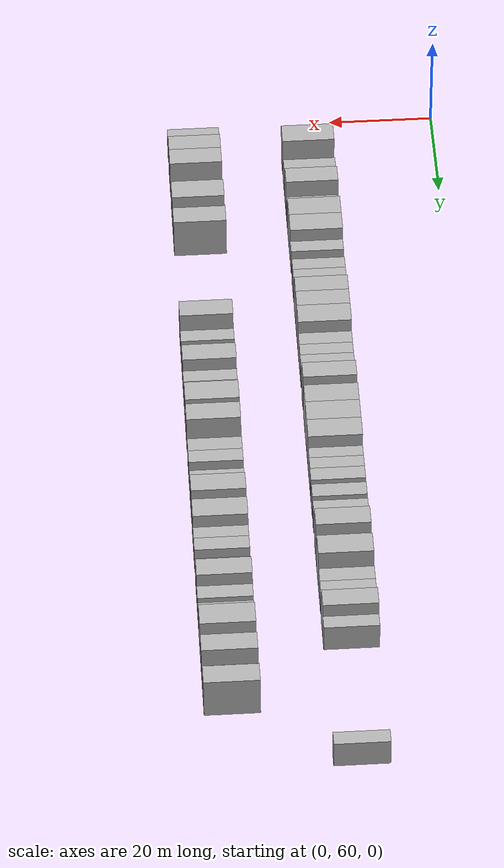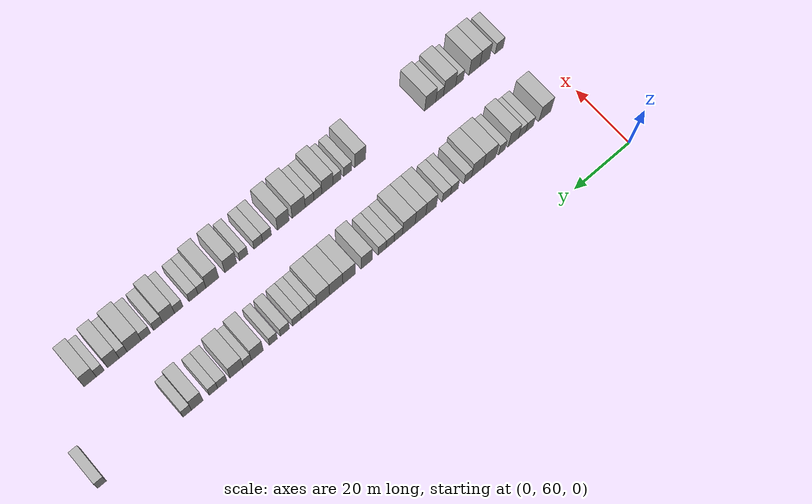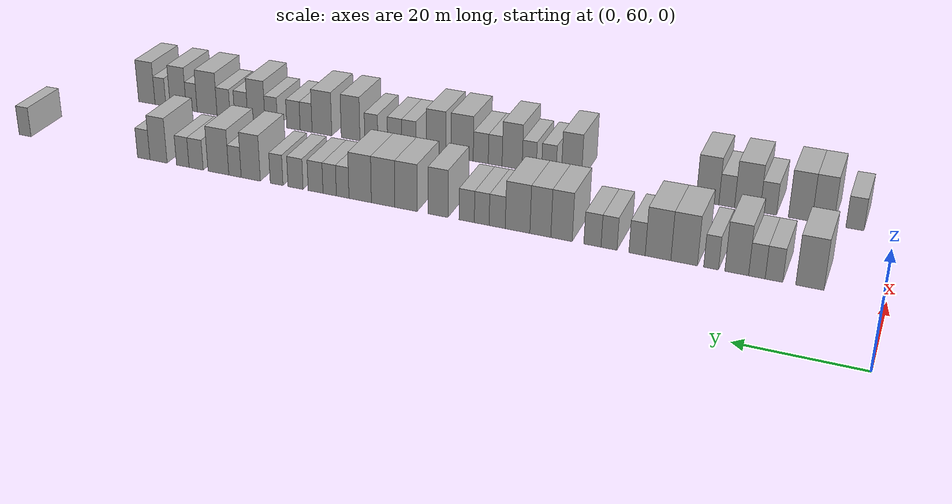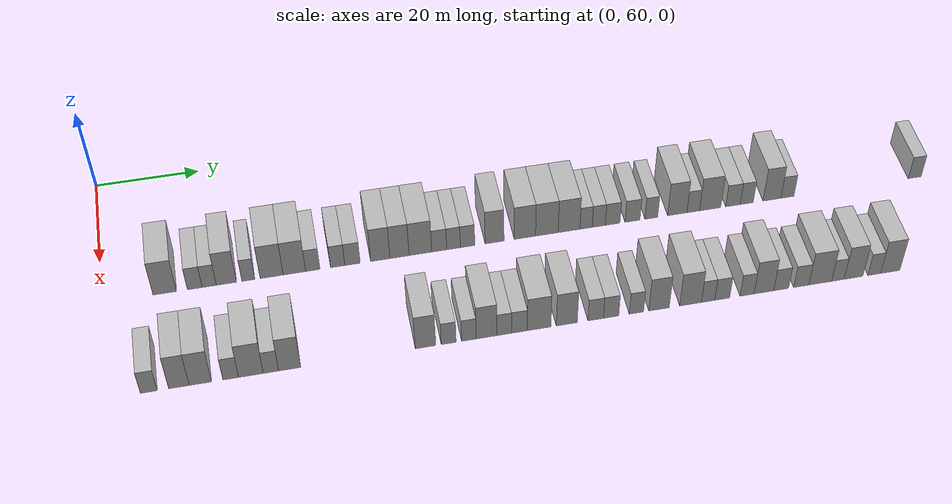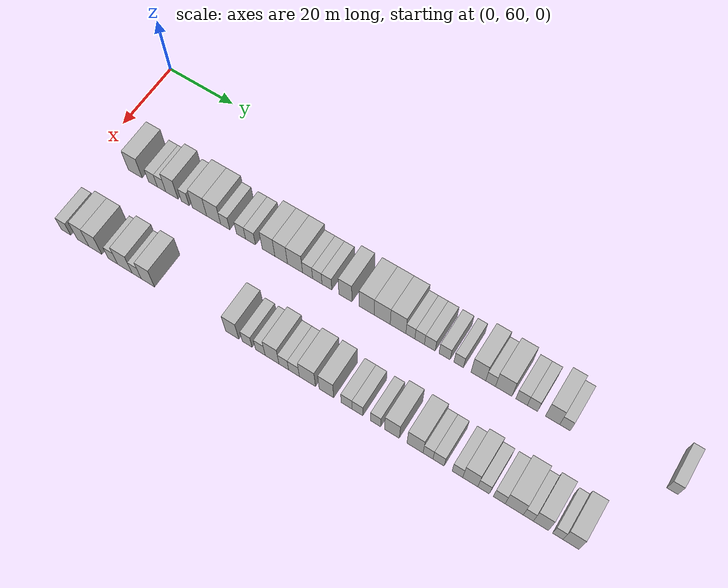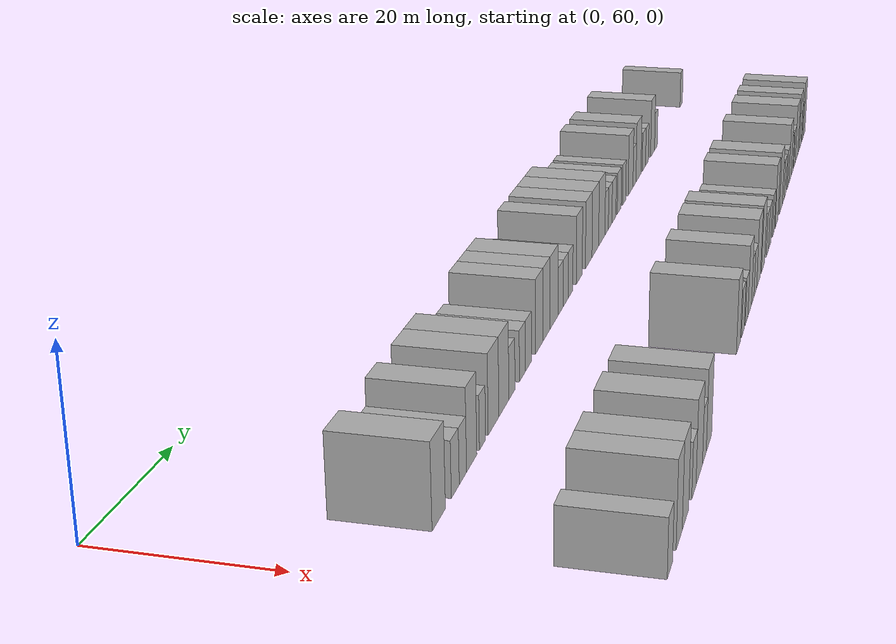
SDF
<sdf version="1.6">
 <world name="default">
  <model name="building_66">
   <static>1</static>
   <pose>25.0000 71.6259 0 0.000000 0.000000 0.000000</pose>
   <link name="link">
    <pose>0 0 4.50 0 0 0</pose>
    <collision name="collision"><geometry><box><size>10.0000 4.3496 9.0000</size></box></geometry></collision>
    <visual name="visual">
     <cast_shadows>0</cast_shadows>
     <geometry><box><size>10.0000 4.3496 9.0000</size></box></geometry>
     <material>
      <script>
       <uri>model://HANNAS_wall/materials/scripts</uri>
       <uri>model://HANNAS_wall/materials/textures</uri>
       <name>vrc/HANNAS_wall</name>
      </script>
     </material>
    </visual>
   </link>
  </model>
  <model name="building_67">
   <static>1</static>
   <pose>25.0000 77.1780 0 0.000000 0.000000 0.000000</pose>
   <link name="link">
    <pose>0 0 3.00 0 0 0</pose>
    <collision name="collision"><geometry><box><size>10.0000 2.7546 6.0000</size></box></geometry></collision>
    <visual name="visual">
     <cast_shadows>0</cast_shadows>
     <geometry><box><size>10.0000 2.7546 6.0000</size></box></geometry>
     <material>
      <script>
       <uri>model://HANNAS_wall/materials/scripts</uri>
       <uri>model://HANNAS_wall/materials/textures</uri>
       <name>vrc/HANNAS_wall</name>
      </script>
     </material>
    </visual>
   </link>
  </model>
  <model name="building_68">
   <static>1</static>
   <pose>25.0000 79.8654 0 0.000000 0.000000 0.000000</pose>
   <link name="link">
    <pose>0 0 3.00 0 0 0</pose>
    <collision name="collision"><geometry><box><size>10.0000 2.6202 6.0000</size></box></geometry></collision>
    <visual name="visual">
     <cast_shadows>0</cast_shadows>
     <geometry><box><size>10.0000 2.6202 6.0000</size></box></geometry>
     <material>
      <script>
       <uri>model://HANNAS_wall/materials/scripts</uri>
       <uri>model://HANNAS_wall/materials/textures</uri>
       <name>vrc/HANNAS_wall</name>
      </script>
     </material>
    </visual>
   </link>
  </model>
  <model name="building_69">
   <static>1</static>
   <pose>25.0000 83.0649 0 0.000000 0.000000 0.000000</pose>
   <link name="link">
    <pose>0 0 4.50 0 0 0</pose>
    <collision name="collision"><geometry><box><size>10.0000 3.7788 9.0000</size></box></geometry></collision>
    <visual name="visual">
     <cast_shadows>0</cast_shadows>
     <geometry><box><size>10.0000 3.7788 9.0000</size></box></geometry>
     <material>
      <script>
       <uri>model://HANNAS_wall/materials/scripts</uri>
       <uri>model://HANNAS_wall/materials/textures</uri>
       <name>vrc/HANNAS_wall</name>
      </script>
     </material>
    </visual>
   </link>
  </model>
  <model name="building_70">
   <static>1</static>
   <pose>25.0000 87.1570 0 0.000000 0.000000 0.000000</pose>
   <link name="link">
    <pose>0 0 3.00 0 0 0</pose>
    <collision name="collision"><geometry><box><size>10.0000 2.4053 6.0000</size></box></geometry></collision>
    <visual name="visual">
     <cast_shadows>0</cast_shadows>
     <geometry><box><size>10.0000 2.4053 6.0000</size></box></geometry>
     <material>
      <script>
       <uri>model://HANNAS_wall/materials/scripts</uri>
       <uri>model://HANNAS_wall/materials/textures</uri>
       <name>vrc/HANNAS_wall</name>
      </script>
     </material>
    </visual>
   </link>
  </model>
  <model name="building_71">
   <static>1</static>
   <pose>25.0000 91.5323 0 0.000000 0.000000 0.000000</pose>
   <link name="link">
    <pose>0 0 4.50 0 0 0</pose>
    <collision name="collision"><geometry><box><size>10.0000 4.3453 9.0000</size></box></geometry></collision>
    <visual name="visual">
     <cast_shadows>0</cast_shadows>
     <geometry><box><size>10.0000 4.3453 9.0000</size></box></geometry>
     <material>
      <script>
       <uri>model://HANNAS_wall/materials/scripts</uri>
       <uri>model://HANNAS_wall/materials/textures</uri>
       <name>vrc/HANNAS_wall</name>
      </script>
     </material>
    </visual>
   </link>
  </model>
  <model name="building_72">
   <static>1</static>
   <pose>25.0000 95.8232 0 0.000000 0.000000 0.000000</pose>
   <link name="link">
    <pose>0 0 4.50 0 0 0</pose>
    <collision name="collision"><geometry><box><size>10.0000 4.2366 9.0000</size></box></geometry></collision>
    <visual name="visual">
     <cast_shadows>0</cast_shadows>
     <geometry><box><size>10.0000 4.2366 9.0000</size></box></geometry>
     <material>
      <script>
       <uri>model://HANNAS_wall/materials/scripts</uri>
       <uri>model://HANNAS_wall/materials/textures</uri>
       <name>vrc/HANNAS_wall</name>
      </script>
     </material>
    </visual>
   </link>
  </model>
  <model name="building_73">
   <static>1</static>
   <pose>25.0000 99.2963 0 0.000000 0.000000 0.000000</pose>
   <link name="link">
    <pose>0 0 3.00 0 0 0</pose>
    <collision name="collision"><geometry><box><size>10.0000 2.7095 6.0000</size></box></geometry></collision>
    <visual name="visual">
     <cast_shadows>0</cast_shadows>
     <geometry><box><size>10.0000 2.7095 6.0000</size></box></geometry>
     <material>
      <script>
       <uri>model://HANNAS_wall/materials/scripts</uri>
       <uri>model://HANNAS_wall/materials/textures</uri>
       <name>vrc/HANNAS_wall</name>
      </script>
     </material>
    </visual>
   </link>
  </model>
  <model name="building_74">
   <static>1</static>
   <pose>25.0000 104.0020 0 0.000000 0.000000 0.000000</pose>
   <link name="link">
    <pose>0 0 3.00 0 0 0</pose>
    <collision name="collision"><geometry><box><size>10.0000 2.7020 6.0000</size></box></geometry></collision>
    <visual name="visual">
     <cast_shadows>0</cast_shadows>
     <geometry><box><size>10.0000 2.7020 6.0000</size></box></geometry>
     <material>
      <script>
       <uri>model://HANNAS_wall/materials/scripts</uri>
       <uri>model://HANNAS_wall/materials/textures</uri>
       <name>vrc/HANNAS_wall</name>
      </script>
     </material>
    </visual>
   </link>
  </model>
  <model name="building_75">
   <static>1</static>
   <pose>25.0000 106.8193 0 0.000000 0.000000 0.000000</pose>
   <link name="link">
    <pose>0 0 3.00 0 0 0</pose>
    <collision name="collision"><geometry><box><size>10.0000 2.9324 6.0000</size></box></geometry></collision>
    <visual name="visual">
     <cast_shadows>0</cast_shadows>
     <geometry><box><size>10.0000 2.9324 6.0000</size></box></geometry>
     <material>
      <script>
       <uri>model://HANNAS_wall/materials/scripts</uri>
       <uri>model://HANNAS_wall/materials/textures</uri>
       <name>vrc/HANNAS_wall</name>
      </script>
     </material>
    </visual>
   </link>
  </model>
  <model name="building_76">
   <static>1</static>
   <pose>25.0000 112.1365 0 0.000000 0.000000 0.000000</pose>
   <link name="link">
    <pose>0 0 4.50 0 0 0</pose>
    <collision name="collision"><geometry><box><size>10.0000 3.7021 9.0000</size></box></geometry></collision>
    <visual name="visual">
     <cast_shadows>0</cast_shadows>
     <geometry><box><size>10.0000 3.7021 9.0000</size></box></geometry>
     <material>
      <script>
       <uri>model://HANNAS_wall/materials/scripts</uri>
       <uri>model://HANNAS_wall/materials/textures</uri>
       <name>vrc/HANNAS_wall</name>
      </script>
     </material>
    </visual>
   </link>
  </model>
  <model name="building_77">
   <static>1</static>
   <pose>25.0000 115.8191 0 0.000000 0.000000 0.000000</pose>
   <link name="link">
    <pose>0 0 4.50 0 0 0</pose>
    <collision name="collision"><geometry><box><size>10.0000 3.6630 9.0000</size></box></geometry></collision>
    <visual name="visual">
     <cast_shadows>0</cast_shadows>
     <geometry><box><size>10.0000 3.6630 9.0000</size></box></geometry>
     <material>
      <script>
       <uri>model://HANNAS_wall/materials/scripts</uri>
       <uri>model://HANNAS_wall/materials/textures</uri>
       <name>vrc/HANNAS_wall</name>
      </script>
     </material>
    </visual>
   </link>
  </model>
  <model name="building_78">
   <static>1</static>
   <pose>25.0000 119.8326 0 0.000000 0.000000 0.000000</pose>
   <link name="link">
    <pose>0 0 4.50 0 0 0</pose>
    <collision name="collision"><geometry><box><size>10.0000 4.3639 9.0000</size></box></geometry></collision>
    <visual name="visual">
     <cast_shadows>0</cast_shadows>
     <geometry><box><size>10.0000 4.3639 9.0000</size></box></geometry>
     <material>
      <script>
       <uri>model://HANNAS_wall/materials/scripts</uri>
       <uri>model://HANNAS_wall/materials/textures</uri>
       <name>vrc/HANNAS_wall</name>
      </script>
     </material>
    </visual>
   </link>
  </model>
  <model name="building_79">
   <static>1</static>
   <pose>25.0000 123.4523 0 0.000000 0.000000 0.000000</pose>
   <link name="link">
    <pose>0 0 3.00 0 0 0</pose>
    <collision name="collision"><geometry><box><size>10.0000 2.8755 6.0000</size></box></geometry></collision>
    <visual name="visual">
     <cast_shadows>0</cast_shadows>
     <geometry><box><size>10.0000 2.8755 6.0000</size></box></geometry>
     <material>
      <script>
       <uri>model://HANNAS_wall/materials/scripts</uri>
       <uri>model://HANNAS_wall/materials/textures</uri>
       <name>vrc/HANNAS_wall</name>
      </script>
     </material>
    </visual>
   </link>
  </model>
  <model name="building_80">
   <static>1</static>
   <pose>25.0000 126.2203 0 0.000000 0.000000 0.000000</pose>
   <link name="link">
    <pose>0 0 3.00 0 0 0</pose>
    <collision name="collision"><geometry><box><size>10.0000 2.6606 6.0000</size></box></geometry></collision>
    <visual name="visual">
     <cast_shadows>0</cast_shadows>
     <geometry><box><size>10.0000 2.6606 6.0000</size></box></geometry>
     <material>
      <script>
       <uri>model://HANNAS_wall/materials/scripts</uri>
       <uri>model://HANNAS_wall/materials/textures</uri>
       <name>vrc/HANNAS_wall</name>
      </script>
     </material>
    </visual>
   </link>
  </model>
  <model name="building_81">
   <static>1</static>
   <pose>25.0000 128.9449 0 0.000000 0.000000 0.000000</pose>
   <link name="link">
    <pose>0 0 3.00 0 0 0</pose>
    <collision name="collision"><geometry><box><size>10.0000 2.7885 6.0000</size></box></geometry></collision>
    <visual name="visual">
     <cast_shadows>0</cast_shadows>
     <geometry><box><size>10.0000 2.7885 6.0000</size></box></geometry>
     <material>
      <script>
       <uri>model://HANNAS_wall/materials/scripts</uri>
       <uri>model://HANNAS_wall/materials/textures</uri>
       <name>vrc/HANNAS_wall</name>
      </script>
     </material>
    </visual>
   </link>
  </model>
  <model name="building_82">
   <static>1</static>
   <pose>25.0000 134.1834 0 0.000000 0.000000 0.000000</pose>
   <link name="link">
    <pose>0 0 4.50 0 0 0</pose>
    <collision name="collision"><geometry><box><size>10.0000 3.6885 9.0000</size></box></geometry></collision>
    <visual name="visual">
     <cast_shadows>0</cast_shadows>
     <geometry><box><size>10.0000 3.6885 9.0000</size></box></geometry>
     <material>
      <script>
       <uri>model://HANNAS_wall/materials/scripts</uri>
       <uri>model://HANNAS_wall/materials/textures</uri>
       <name>vrc/HANNAS_wall</name>
      </script>
     </material>
    </visual>
   </link>
  </model>
  <model name="building_83">
   <static>1</static>
   <pose>25.0000 140.1214 0 0.000000 0.000000 0.000000</pose>
   <link name="link">
    <pose>0 0 4.50 0 0 0</pose>
    <collision name="collision"><geometry><box><size>10.0000 4.1876 9.0000</size></box></geometry></collision>
    <visual name="visual">
     <cast_shadows>0</cast_shadows>
     <geometry><box><size>10.0000 4.1876 9.0000</size></box></geometry>
     <material>
      <script>
       <uri>model://HANNAS_wall/materials/scripts</uri>
       <uri>model://HANNAS_wall/materials/textures</uri>
       <name>vrc/HANNAS_wall</name>
      </script>
     </material>
    </visual>
   </link>
  </model>
  <model name="building_84">
   <static>1</static>
   <pose>25.0000 144.4341 0 0.000000 0.000000 0.000000</pose>
   <link name="link">
    <pose>0 0 4.50 0 0 0</pose>
    <collision name="collision"><geometry><box><size>10.0000 4.4377 9.0000</size></box></geometry></collision>
    <visual name="visual">
     <cast_shadows>0</cast_shadows>
     <geometry><box><size>10.0000 4.4377 9.0000</size></box></geometry>
     <material>
      <script>
       <uri>model://HANNAS_wall/materials/scripts</uri>
       <uri>model://HANNAS_wall/materials/textures</uri>
       <name>vrc/HANNAS_wall</name>
      </script>
     </material>
    </visual>
   </link>
  </model>
  <model name="building_85">
   <static>1</static>
   <pose>25.0000 148.8020 0 0.000000 0.000000 0.000000</pose>
   <link name="link">
    <pose>0 0 4.50 0 0 0</pose>
    <collision name="collision"><geometry><box><size>10.0000 4.2981 9.0000</size></box></geometry></collision>
    <visual name="visual">
     <cast_shadows>0</cast_shadows>
     <geometry><box><size>10.0000 4.2981 9.0000</size></box></geometry>
     <material>
      <script>
       <uri>model://HANNAS_wall/materials/scripts</uri>
       <uri>model://HANNAS_wall/materials/textures</uri>
       <name>vrc/HANNAS_wall</name>
      </script>
     </material>
    </visual>
   </link>
  </model>
  <model name="building_86">
   <static>1</static>
   <pose>25.0000 152.1677 0 0.000000 0.000000 0.000000</pose>
   <link name="link">
    <pose>0 0 3.00 0 0 0</pose>
    <collision name="collision"><geometry><box><size>10.0000 2.4332 6.0000</size></box></geometry></collision>
    <visual name="visual">
     <cast_shadows>0</cast_shadows>
     <geometry><box><size>10.0000 2.4332 6.0000</size></box></geometry>
     <material>
      <script>
       <uri>model://HANNAS_wall/materials/scripts</uri>
       <uri>model://HANNAS_wall/materials/textures</uri>
       <name>vrc/HANNAS_wall</name>
      </script>
     </material>
    </visual>
   </link>
  </model>
  <model name="building_87">
   <static>1</static>
   <pose>25.0000 154.6846 0 0.000000 0.000000 0.000000</pose>
   <link name="link">
    <pose>0 0 3.00 0 0 0</pose>
    <collision name="collision"><geometry><box><size>10.0000 2.6007 6.0000</size></box></geometry></collision>
    <visual name="visual">
     <cast_shadows>0</cast_shadows>
     <geometry><box><size>10.0000 2.6007 6.0000</size></box></geometry>
     <material>
      <script>
       <uri>model://HANNAS_wall/materials/scripts</uri>
       <uri>model://HANNAS_wall/materials/textures</uri>
       <name>vrc/HANNAS_wall</name>
      </script>
     </material>
    </visual>
   </link>
  </model>
  <model name="building_88">
   <static>1</static>
   <pose>25.0000 157.4364 0 0.000000 0.000000 0.000000</pose>
   <link name="link">
    <pose>0 0 3.00 0 0 0</pose>
    <collision name="collision"><geometry><box><size>10.0000 2.9029 6.0000</size></box></geometry></collision>
    <visual name="visual">
     <cast_shadows>0</cast_shadows>
     <geometry><box><size>10.0000 2.9029 6.0000</size></box></geometry>
     <material>
      <script>
       <uri>model://HANNAS_wall/materials/scripts</uri>
       <uri>model://HANNAS_wall/materials/textures</uri>
       <name>vrc/HANNAS_wall</name>
      </script>
     </material>
    </visual>
   </link>
  </model>
  <model name="building_89">
   <static>1</static>
   <pose>25.0000 161.3820 0 0.000000 0.000000 0.000000</pose>
   <link name="link">
    <pose>0 0 3.00 0 0 0</pose>
    <collision name="collision"><geometry><box><size>10.0000 2.9883 6.0000</size></box></geometry></collision>
    <visual name="visual">
     <cast_shadows>0</cast_shadows>
     <geometry><box><size>10.0000 2.9883 6.0000</size></box></geometry>
     <material>
      <script>
       <uri>model://HANNAS_wall/materials/scripts</uri>
       <uri>model://HANNAS_wall/materials/textures</uri>
       <name>vrc/HANNAS_wall</name>
      </script>
     </material>
    </visual>
   </link>
  </model>
  <model name="building_90">
   <static>1</static>
   <pose>25.0000 165.1503 0 0.000000 0.000000 0.000000</pose>
   <link name="link">
    <pose>0 0 3.00 0 0 0</pose>
    <collision name="collision"><geometry><box><size>10.0000 2.5482 6.0000</size></box></geometry></collision>
    <visual name="visual">
     <cast_shadows>0</cast_shadows>
     <geometry><box><size>10.0000 2.5482 6.0000</size></box></geometry>
     <material>
      <script>
       <uri>model://HANNAS_wall/materials/scripts</uri>
       <uri>model://HANNAS_wall/materials/textures</uri>
       <name>vrc/HANNAS_wall</name>
      </script>
     </material>
    </visual>
   </link>
  </model>
  <model name="building_91">
   <static>1</static>
   <pose>25.0000 170.3662 0 0.000000 0.000000 0.000000</pose>
   <link name="link">
    <pose>0 0 4.50 0 0 0</pose>
    <collision name="collision"><geometry><box><size>10.0000 3.8836 9.0000</size></box></geometry></collision>
    <visual name="visual">
     <cast_shadows>0</cast_shadows>
     <geometry><box><size>10.0000 3.8836 9.0000</size></box></geometry>
     <material>
      <script>
       <uri>model://HANNAS_wall/materials/scripts</uri>
       <uri>model://HANNAS_wall/materials/textures</uri>
       <name>vrc/HANNAS_wall</name>
      </script>
     </material>
    </visual>
   </link>
  </model>
  <model name="building_92">
   <static>1</static>
   <pose>25.0000 173.5777 0 0.000000 0.000000 0.000000</pose>
   <link name="link">
    <pose>0 0 3.00 0 0 0</pose>
    <collision name="collision"><geometry><box><size>10.0000 2.5394 6.0000</size></box></geometry></collision>
    <visual name="visual">
     <cast_shadows>0</cast_shadows>
     <geometry><box><size>10.0000 2.5394 6.0000</size></box></geometry>
     <material>
      <script>
       <uri>model://HANNAS_wall/materials/scripts</uri>
       <uri>model://HANNAS_wall/materials/textures</uri>
       <name>vrc/HANNAS_wall</name>
      </script>
     </material>
    </visual>
   </link>
  </model>
  <model name="building_93">
   <static>1</static>
   <pose>25.0000 176.9889 0 0.000000 0.000000 0.000000</pose>
   <link name="link">
    <pose>0 0 4.50 0 0 0</pose>
    <collision name="collision"><geometry><box><size>10.0000 4.2830 9.0000</size></box></geometry></collision>
    <visual name="visual">
     <cast_shadows>0</cast_shadows>
     <geometry><box><size>10.0000 4.2830 9.0000</size></box></geometry>
     <material>
      <script>
       <uri>model://HANNAS_wall/materials/scripts</uri>
       <uri>model://HANNAS_wall/materials/textures</uri>
       <name>vrc/HANNAS_wall</name>
      </script>
     </material>
    </visual>
   </link>
  </model>
  <model name="building_94">
   <static>1</static>
   <pose>25.0000 181.6113 0 0.000000 0.000000 0.000000</pose>
   <link name="link">
    <pose>0 0 3.00 0 0 0</pose>
    <collision name="collision"><geometry><box><size>10.0000 2.9618 6.0000</size></box></geometry></collision>
    <visual name="visual">
     <cast_shadows>0</cast_shadows>
     <geometry><box><size>10.0000 2.9618 6.0000</size></box></geometry>
     <material>
      <script>
       <uri>model://HANNAS_wall/materials/scripts</uri>
       <uri>model://HANNAS_wall/materials/textures</uri>
       <name>vrc/HANNAS_wall</name>
      </script>
     </material>
    </visual>
   </link>
  </model>
  <model name="building_95">
   <static>1</static>
   <pose>25.0000 184.4083 0 0.000000 0.000000 0.000000</pose>
   <link name="link">
    <pose>0 0 3.00 0 0 0</pose>
    <collision name="collision"><geometry><box><size>10.0000 2.6321 6.0000</size></box></geometry></collision>
    <visual name="visual">
     <cast_shadows>0</cast_shadows>
     <geometry><box><size>10.0000 2.6321 6.0000</size></box></geometry>
     <material>
      <script>
       <uri>model://HANNAS_wall/materials/scripts</uri>
       <uri>model://HANNAS_wall/materials/textures</uri>
       <name>vrc/HANNAS_wall</name>
      </script>
     </material>
    </visual>
   </link>
  </model>
  <model name="building_96">
   <static>1</static>
   <pose>25.0000 189.5480 0 0.000000 0.000000 0.000000</pose>
   <link name="link">
    <pose>0 0 4.50 0 0 0</pose>
    <collision name="collision"><geometry><box><size>10.0000 3.6474 9.0000</size></box></geometry></collision>
    <visual name="visual">
     <cast_shadows>0</cast_shadows>
     <geometry><box><size>10.0000 3.6474 9.0000</size></box></geometry>
     <material>
      <script>
       <uri>model://HANNAS_wall/materials/scripts</uri>
       <uri>model://HANNAS_wall/materials/textures</uri>
       <name>vrc/HANNAS_wall</name>
      </script>
     </material>
    </visual>
   </link>
  </model>
  <model name="building_97">
   <static>1</static>
   <pose>25.0000 192.7031 0 0.000000 0.000000 0.000000</pose>
   <link name="link">
    <pose>0 0 3.00 0 0 0</pose>
    <collision name="collision"><geometry><box><size>10.0000 2.6629 6.0000</size></box></geometry></collision>
    <visual name="visual">
     <cast_shadows>0</cast_shadows>
     <geometry><box><size>10.0000 2.6629 6.0000</size></box></geometry>
     <material>
      <script>
       <uri>model://HANNAS_wall/materials/scripts</uri>
       <uri>model://HANNAS_wall/materials/textures</uri>
       <name>vrc/HANNAS_wall</name>
      </script>
     </material>
    </visual>
   </link>
  </model>
  <model name="building_98">
   <static>1</static>
   <pose>25.0000 219.0721 0 0.000000 0.000000 0.000000</pose>
   <link name="link">
    <pose>0 0 3.00 0 0 0</pose>
    <collision name="collision"><geometry><box><size>10.0000 2.6917 6.0000</size></box></geometry></collision>
    <visual name="visual">
     <cast_shadows>0</cast_shadows>
     <geometry><box><size>10.0000 2.6917 6.0000</size></box></geometry>
     <material>
      <script>
       <uri>model://HANNAS_wall/materials/scripts</uri>
       <uri>model://HANNAS_wall/materials/textures</uri>
       <name>vrc/HANNAS_wall</name>
      </script>
     </material>
    </visual>
   </link>
  </model>
  <model name="building_162">
   <static>1</static>
   <pose>47.0000 67.5108 0 0.000000 0.000000 0.000000</pose>
   <link name="link">
    <pose>0 0 3.00 0 0 0</pose>
    <collision name="collision"><geometry><box><size>10.0000 2.9660 6.0000</size></box></geometry></collision>
    <visual name="visual">
     <cast_shadows>0</cast_shadows>
     <geometry><box><size>10.0000 2.9660 6.0000</size></box></geometry>
     <material>
      <script>
       <uri>model://HANNAS_wall/materials/scripts</uri>
       <uri>model://HANNAS_wall/materials/textures</uri>
       <name>vrc/HANNAS_wall</name>
      </script>
     </material>
    </visual>
   </link>
  </model>
  <model name="building_163">
   <static>1</static>
   <pose>47.0000 72.8011 0 0.000000 0.000000 0.000000</pose>
   <link name="link">
    <pose>0 0 4.50 0 0 0</pose>
    <collision name="collision"><geometry><box><size>10.0000 3.6144 9.0000</size></box></geometry></collision>
    <visual name="visual">
     <cast_shadows>0</cast_shadows>
     <geometry><box><size>10.0000 3.6144 9.0000</size></box></geometry>
     <material>
      <script>
       <uri>model://HANNAS_wall/materials/scripts</uri>
       <uri>model://HANNAS_wall/materials/textures</uri>
       <name>vrc/HANNAS_wall</name>
      </script>
     </material>
    </visual>
   </link>
  </model>
  <model name="building_164">
   <static>1</static>
   <pose>47.0000 76.5898 0 0.000000 0.000000 0.000000</pose>
   <link name="link">
    <pose>0 0 4.50 0 0 0</pose>
    <collision name="collision"><geometry><box><size>10.0000 3.9630 9.0000</size></box></geometry></collision>
    <visual name="visual">
     <cast_shadows>0</cast_shadows>
     <geometry><box><size>10.0000 3.9630 9.0000</size></box></geometry>
     <material>
      <script>
       <uri>model://HANNAS_wall/materials/scripts</uri>
       <uri>model://HANNAS_wall/materials/textures</uri>
       <name>vrc/HANNAS_wall</name>
      </script>
     </material>
    </visual>
   </link>
  </model>
  <model name="building_165">
   <static>1</static>
   <pose>47.0000 81.9695 0 0.000000 0.000000 0.000000</pose>
   <link name="link">
    <pose>0 0 3.00 0 0 0</pose>
    <collision name="collision"><geometry><box><size>10.0000 2.7966 6.0000</size></box></geometry></collision>
    <visual name="visual">
     <cast_shadows>0</cast_shadows>
     <geometry><box><size>10.0000 2.7966 6.0000</size></box></geometry>
     <material>
      <script>
       <uri>model://HANNAS_wall/materials/scripts</uri>
       <uri>model://HANNAS_wall/materials/textures</uri>
       <name>vrc/HANNAS_wall</name>
      </script>
     </material>
    </visual>
   </link>
  </model>
  <model name="building_166">
   <static>1</static>
   <pose>47.0000 85.5713 0 0.000000 0.000000 0.000000</pose>
   <link name="link">
    <pose>0 0 4.50 0 0 0</pose>
    <collision name="collision"><geometry><box><size>10.0000 4.4070 9.0000</size></box></geometry></collision>
    <visual name="visual">
     <cast_shadows>0</cast_shadows>
     <geometry><box><size>10.0000 4.4070 9.0000</size></box></geometry>
     <material>
      <script>
       <uri>model://HANNAS_wall/materials/scripts</uri>
       <uri>model://HANNAS_wall/materials/textures</uri>
       <name>vrc/HANNAS_wall</name>
      </script>
     </material>
    </visual>
   </link>
  </model>
  <model name="building_167">
   <static>1</static>
   <pose>47.0000 89.1407 0 0.000000 0.000000 0.000000</pose>
   <link name="link">
    <pose>0 0 3.00 0 0 0</pose>
    <collision name="collision"><geometry><box><size>10.0000 2.7319 6.0000</size></box></geometry></collision>
    <visual name="visual">
     <cast_shadows>0</cast_shadows>
     <geometry><box><size>10.0000 2.7319 6.0000</size></box></geometry>
     <material>
      <script>
       <uri>model://HANNAS_wall/materials/scripts</uri>
       <uri>model://HANNAS_wall/materials/textures</uri>
       <name>vrc/HANNAS_wall</name>
      </script>
     </material>
    </visual>
   </link>
  </model>
  <model name="building_168">
   <static>1</static>
   <pose>47.0000 92.4949 0 0.000000 0.000000 0.000000</pose>
   <link name="link">
    <pose>0 0 4.50 0 0 0</pose>
    <collision name="collision"><geometry><box><size>10.0000 3.9764 9.0000</size></box></geometry></collision>
    <visual name="visual">
     <cast_shadows>0</cast_shadows>
     <geometry><box><size>10.0000 3.9764 9.0000</size></box></geometry>
     <material>
      <script>
       <uri>model://HANNAS_wall/materials/scripts</uri>
       <uri>model://HANNAS_wall/materials/textures</uri>
       <name>vrc/HANNAS_wall</name>
      </script>
     </material>
    </visual>
   </link>
  </model>
  <model name="building_169">
   <static>1</static>
   <pose>47.0000 117.1301 0 0.000000 0.000000 0.000000</pose>
   <link name="link">
    <pose>0 0 4.50 0 0 0</pose>
    <collision name="collision"><geometry><box><size>10.0000 3.7646 9.0000</size></box></geometry></collision>
    <visual name="visual">
     <cast_shadows>0</cast_shadows>
     <geometry><box><size>10.0000 3.7646 9.0000</size></box></geometry>
     <material>
      <script>
       <uri>model://HANNAS_wall/materials/scripts</uri>
       <uri>model://HANNAS_wall/materials/textures</uri>
       <name>vrc/HANNAS_wall</name>
      </script>
     </material>
    </visual>
   </link>
  </model>
  <model name="building_170">
   <static>1</static>
   <pose>47.0000 121.3876 0 0.000000 0.000000 0.000000</pose>
   <link name="link">
    <pose>0 0 3.00 0 0 0</pose>
    <collision name="collision"><geometry><box><size>10.0000 2.7504 6.0000</size></box></geometry></collision>
    <visual name="visual">
     <cast_shadows>0</cast_shadows>
     <geometry><box><size>10.0000 2.7504 6.0000</size></box></geometry>
     <material>
      <script>
       <uri>model://HANNAS_wall/materials/scripts</uri>
       <uri>model://HANNAS_wall/materials/textures</uri>
       <name>vrc/HANNAS_wall</name>
      </script>
     </material>
    </visual>
   </link>
  </model>
  <model name="building_171">
   <static>1</static>
   <pose>47.0000 125.1137 0 0.000000 0.000000 0.000000</pose>
   <link name="link">
    <pose>0 0 3.00 0 0 0</pose>
    <collision name="collision"><geometry><box><size>10.0000 2.7017 6.0000</size></box></geometry></collision>
    <visual name="visual">
     <cast_shadows>0</cast_shadows>
     <geometry><box><size>10.0000 2.7017 6.0000</size></box></geometry>
     <material>
      <script>
       <uri>model://HANNAS_wall/materials/scripts</uri>
       <uri>model://HANNAS_wall/materials/textures</uri>
       <name>vrc/HANNAS_wall</name>
      </script>
     </material>
    </visual>
   </link>
  </model>
  <model name="building_172">
   <static>1</static>
   <pose>47.0000 128.3947 0 0.000000 0.000000 0.000000</pose>
   <link name="link">
    <pose>0 0 4.50 0 0 0</pose>
    <collision name="collision"><geometry><box><size>10.0000 3.8604 9.0000</size></box></geometry></collision>
    <visual name="visual">
     <cast_shadows>0</cast_shadows>
     <geometry><box><size>10.0000 3.8604 9.0000</size></box></geometry>
     <material>
      <script>
       <uri>model://HANNAS_wall/materials/scripts</uri>
       <uri>model://HANNAS_wall/materials/textures</uri>
       <name>vrc/HANNAS_wall</name>
      </script>
     </material>
    </visual>
   </link>
  </model>
  <model name="building_173">
   <static>1</static>
   <pose>47.0000 131.6654 0 0.000000 0.000000 0.000000</pose>
   <link name="link">
    <pose>0 0 3.00 0 0 0</pose>
    <collision name="collision"><geometry><box><size>10.0000 2.6809 6.0000</size></box></geometry></collision>
    <visual name="visual">
     <cast_shadows>0</cast_shadows>
     <geometry><box><size>10.0000 2.6809 6.0000</size></box></geometry>
     <material>
      <script>
       <uri>model://HANNAS_wall/materials/scripts</uri>
       <uri>model://HANNAS_wall/materials/textures</uri>
       <name>vrc/HANNAS_wall</name>
      </script>
     </material>
    </visual>
   </link>
  </model>
  <model name="building_174">
   <static>1</static>
   <pose>47.0000 134.4782 0 0.000000 0.000000 0.000000</pose>
   <link name="link">
    <pose>0 0 3.00 0 0 0</pose>
    <collision name="collision"><geometry><box><size>10.0000 2.9447 6.0000</size></box></geometry></collision>
    <visual name="visual">
     <cast_shadows>0</cast_shadows>
     <geometry><box><size>10.0000 2.9447 6.0000</size></box></geometry>
     <material>
      <script>
       <uri>model://HANNAS_wall/materials/scripts</uri>
       <uri>model://HANNAS_wall/materials/textures</uri>
       <name>vrc/HANNAS_wall</name>
      </script>
     </material>
    </visual>
   </link>
  </model>
  <model name="building_175">
   <static>1</static>
   <pose>47.0000 138.1594 0 0.000000 0.000000 0.000000</pose>
   <link name="link">
    <pose>0 0 4.50 0 0 0</pose>
    <collision name="collision"><geometry><box><size>10.0000 4.4177 9.0000</size></box></geometry></collision>
    <visual name="visual">
     <cast_shadows>0</cast_shadows>
     <geometry><box><size>10.0000 4.4177 9.0000</size></box></geometry>
     <material>
      <script>
       <uri>model://HANNAS_wall/materials/scripts</uri>
       <uri>model://HANNAS_wall/materials/textures</uri>
       <name>vrc/HANNAS_wall</name>
      </script>
     </material>
    </visual>
   </link>
  </model>
  <model name="building_176">
   <static>1</static>
   <pose>47.0000 143.3435 0 0.000000 0.000000 0.000000</pose>
   <link name="link">
    <pose>0 0 4.50 0 0 0</pose>
    <collision name="collision"><geometry><box><size>10.0000 3.9506 9.0000</size></box></geometry></collision>
    <visual name="visual">
     <cast_shadows>0</cast_shadows>
     <geometry><box><size>10.0000 3.9506 9.0000</size></box></geometry>
     <material>
      <script>
       <uri>model://HANNAS_wall/materials/scripts</uri>
       <uri>model://HANNAS_wall/materials/textures</uri>
       <name>vrc/HANNAS_wall</name>
      </script>
     </material>
    </visual>
   </link>
  </model>
  <model name="building_177">
   <static>1</static>
   <pose>47.0000 148.7900 0 0.000000 0.000000 0.000000</pose>
   <link name="link">
    <pose>0 0 3.00 0 0 0</pose>
    <collision name="collision"><geometry><box><size>10.0000 2.9425 6.0000</size></box></geometry></collision>
    <visual name="visual">
     <cast_shadows>0</cast_shadows>
     <geometry><box><size>10.0000 2.9425 6.0000</size></box></geometry>
     <material>
      <script>
       <uri>model://HANNAS_wall/materials/scripts</uri>
       <uri>model://HANNAS_wall/materials/textures</uri>
       <name>vrc/HANNAS_wall</name>
      </script>
     </material>
    </visual>
   </link>
  </model>
  <model name="building_178">
   <static>1</static>
   <pose>47.0000 151.7017 0 0.000000 0.000000 0.000000</pose>
   <link name="link">
    <pose>0 0 3.00 0 0 0</pose>
    <collision name="collision"><geometry><box><size>10.0000 2.8809 6.0000</size></box></geometry></collision>
    <visual name="visual">
     <cast_shadows>0</cast_shadows>
     <geometry><box><size>10.0000 2.8809 6.0000</size></box></geometry>
     <material>
      <script>
       <uri>model://HANNAS_wall/materials/scripts</uri>
       <uri>model://HANNAS_wall/materials/textures</uri>
       <name>vrc/HANNAS_wall</name>
      </script>
     </material>
    </visual>
   </link>
  </model>
  <model name="building_179">
   <static>1</static>
   <pose>47.0000 156.4973 0 0.000000 0.000000 0.000000</pose>
   <link name="link">
    <pose>0 0 3.00 0 0 0</pose>
    <collision name="collision"><geometry><box><size>10.0000 2.7103 6.0000</size></box></geometry></collision>
    <visual name="visual">
     <cast_shadows>0</cast_shadows>
     <geometry><box><size>10.0000 2.7103 6.0000</size></box></geometry>
     <material>
      <script>
       <uri>model://HANNAS_wall/materials/scripts</uri>
       <uri>model://HANNAS_wall/materials/textures</uri>
       <name>vrc/HANNAS_wall</name>
      </script>
     </material>
    </visual>
   </link>
  </model>
  <model name="building_180">
   <static>1</static>
   <pose>47.0000 160.8019 0 0.000000 0.000000 0.000000</pose>
   <link name="link">
    <pose>0 0 4.50 0 0 0</pose>
    <collision name="collision"><geometry><box><size>10.0000 3.8989 9.0000</size></box></geometry></collision>
    <visual name="visual">
     <cast_shadows>0</cast_shadows>
     <geometry><box><size>10.0000 3.8989 9.0000</size></box></geometry>
     <material>
      <script>
       <uri>model://HANNAS_wall/materials/scripts</uri>
       <uri>model://HANNAS_wall/materials/textures</uri>
       <name>vrc/HANNAS_wall</name>
      </script>
     </material>
    </visual>
   </link>
  </model>
  <model name="building_181">
   <static>1</static>
   <pose>47.0000 166.8388 0 0.000000 0.000000 0.000000</pose>
   <link name="link">
    <pose>0 0 4.50 0 0 0</pose>
    <collision name="collision"><geometry><box><size>10.0000 4.1748 9.0000</size></box></geometry></collision>
    <visual name="visual">
     <cast_shadows>0</cast_shadows>
     <geometry><box><size>10.0000 4.1748 9.0000</size></box></geometry>
     <material>
      <script>
       <uri>model://HANNAS_wall/materials/scripts</uri>
       <uri>model://HANNAS_wall/materials/textures</uri>
       <name>vrc/HANNAS_wall</name>
      </script>
     </material>
    </visual>
   </link>
  </model>
  <model name="building_182">
   <static>1</static>
   <pose>47.0000 170.2044 0 0.000000 0.000000 0.000000</pose>
   <link name="link">
    <pose>0 0 3.00 0 0 0</pose>
    <collision name="collision"><geometry><box><size>10.0000 2.5565 6.0000</size></box></geometry></collision>
    <visual name="visual">
     <cast_shadows>0</cast_shadows>
     <geometry><box><size>10.0000 2.5565 6.0000</size></box></geometry>
     <material>
      <script>
       <uri>model://HANNAS_wall/materials/scripts</uri>
       <uri>model://HANNAS_wall/materials/textures</uri>
       <name>vrc/HANNAS_wall</name>
      </script>
     </material>
    </visual>
   </link>
  </model>
  <model name="building_183">
   <static>1</static>
   <pose>47.0000 172.9215 0 0.000000 0.000000 0.000000</pose>
   <link name="link">
    <pose>0 0 3.00 0 0 0</pose>
    <collision name="collision"><geometry><box><size>10.0000 2.8777 6.0000</size></box></geometry></collision>
    <visual name="visual">
     <cast_shadows>0</cast_shadows>
     <geometry><box><size>10.0000 2.8777 6.0000</size></box></geometry>
     <material>
      <script>
       <uri>model://HANNAS_wall/materials/scripts</uri>
       <uri>model://HANNAS_wall/materials/textures</uri>
       <name>vrc/HANNAS_wall</name>
      </script>
     </material>
    </visual>
   </link>
  </model>
  <model name="building_184">
   <static>1</static>
   <pose>47.0000 177.7205 0 0.000000 0.000000 0.000000</pose>
   <link name="link">
    <pose>0 0 3.00 0 0 0</pose>
    <collision name="collision"><geometry><box><size>10.0000 2.7202 6.0000</size></box></geometry></collision>
    <visual name="visual">
     <cast_shadows>0</cast_shadows>
     <geometry><box><size>10.0000 2.7202 6.0000</size></box></geometry>
     <material>
      <script>
       <uri>model://HANNAS_wall/materials/scripts</uri>
       <uri>model://HANNAS_wall/materials/textures</uri>
       <name>vrc/HANNAS_wall</name>
      </script>
     </material>
    </visual>
   </link>
  </model>
  <model name="building_185">
   <static>1</static>
   <pose>47.0000 180.9826 0 0.000000 0.000000 0.000000</pose>
   <link name="link">
    <pose>0 0 4.50 0 0 0</pose>
    <collision name="collision"><geometry><box><size>10.0000 3.8039 9.0000</size></box></geometry></collision>
    <visual name="visual">
     <cast_shadows>0</cast_shadows>
     <geometry><box><size>10.0000 3.8039 9.0000</size></box></geometry>
     <material>
      <script>
       <uri>model://HANNAS_wall/materials/scripts</uri>
       <uri>model://HANNAS_wall/materials/textures</uri>
       <name>vrc/HANNAS_wall</name>
      </script>
     </material>
    </visual>
   </link>
  </model>
  <model name="building_186">
   <static>1</static>
   <pose>47.0000 184.3349 0 0.000000 0.000000 0.000000</pose>
   <link name="link">
    <pose>0 0 3.00 0 0 0</pose>
    <collision name="collision"><geometry><box><size>10.0000 2.9008 6.0000</size></box></geometry></collision>
    <visual name="visual">
     <cast_shadows>0</cast_shadows>
     <geometry><box><size>10.0000 2.9008 6.0000</size></box></geometry>
     <material>
      <script>
       <uri>model://HANNAS_wall/materials/scripts</uri>
       <uri>model://HANNAS_wall/materials/textures</uri>
       <name>vrc/HANNAS_wall</name>
      </script>
     </material>
    </visual>
   </link>
  </model>
  <model name="building_187">
   <static>1</static>
   <pose>47.0000 188.2564 0 0.000000 0.000000 0.000000</pose>
   <link name="link">
    <pose>0 0 3.00 0 0 0</pose>
    <collision name="collision"><geometry><box><size>10.0000 2.9421 6.0000</size></box></geometry></collision>
    <visual name="visual">
     <cast_shadows>0</cast_shadows>
     <geometry><box><size>10.0000 2.9421 6.0000</size></box></geometry>
     <material>
      <script>
       <uri>model://HANNAS_wall/materials/scripts</uri>
       <uri>model://HANNAS_wall/materials/textures</uri>
       <name>vrc/HANNAS_wall</name>
      </script>
     </material>
    </visual>
   </link>
  </model>
  <model name="building_188">
   <static>1</static>
   <pose>47.0000 191.9700 0 0.000000 0.000000 0.000000</pose>
   <link name="link">
    <pose>0 0 4.50 0 0 0</pose>
    <collision name="collision"><geometry><box><size>10.0000 4.4850 9.0000</size></box></geometry></collision>
    <visual name="visual">
     <cast_shadows>0</cast_shadows>
     <geometry><box><size>10.0000 4.4850 9.0000</size></box></geometry>
     <material>
      <script>
       <uri>model://HANNAS_wall/materials/scripts</uri>
       <uri>model://HANNAS_wall/materials/textures</uri>
       <name>vrc/HANNAS_wall</name>
      </script>
     </material>
    </visual>
   </link>
  </model>
  <model name="building_189">
   <static>1</static>
   <pose>47.0000 195.4455 0 0.000000 0.000000 0.000000</pose>
   <link name="link">
    <pose>0 0 3.00 0 0 0</pose>
    <collision name="collision"><geometry><box><size>10.0000 2.4659 6.0000</size></box></geometry></collision>
    <visual name="visual">
     <cast_shadows>0</cast_shadows>
     <geometry><box><size>10.0000 2.4659 6.0000</size></box></geometry>
     <material>
      <script>
       <uri>model://HANNAS_wall/materials/scripts</uri>
       <uri>model://HANNAS_wall/materials/textures</uri>
       <name>vrc/HANNAS_wall</name>
      </script>
     </material>
    </visual>
   </link>
  </model>
  <model name="building_190">
   <static>1</static>
   <pose>47.0000 198.5226 0 0.000000 0.000000 0.000000</pose>
   <link name="link">
    <pose>0 0 4.50 0 0 0</pose>
    <collision name="collision"><geometry><box><size>10.0000 3.6883 9.0000</size></box></geometry></collision>
    <visual name="visual">
     <cast_shadows>0</cast_shadows>
     <geometry><box><size>10.0000 3.6883 9.0000</size></box></geometry>
     <material>
      <script>
       <uri>model://HANNAS_wall/materials/scripts</uri>
       <uri>model://HANNAS_wall/materials/textures</uri>
       <name>vrc/HANNAS_wall</name>
      </script>
     </material>
    </visual>
   </link>
  </model>
  <model name="building_191">
   <static>1</static>
   <pose>47.0000 202.6231 0 0.000000 0.000000 0.000000</pose>
   <link name="link">
    <pose>0 0 3.00 0 0 0</pose>
    <collision name="collision"><geometry><box><size>10.0000 2.5128 6.0000</size></box></geometry></collision>
    <visual name="visual">
     <cast_shadows>0</cast_shadows>
     <geometry><box><size>10.0000 2.5128 6.0000</size></box></geometry>
     <material>
      <script>
       <uri>model://HANNAS_wall/materials/scripts</uri>
       <uri>model://HANNAS_wall/materials/textures</uri>
       <name>vrc/HANNAS_wall</name>
      </script>
     </material>
    </visual>
   </link>
  </model>
  <model name="building_192">
   <static>1</static>
   <pose>47.0000 205.7880 0 0.000000 0.000000 0.000000</pose>
   <link name="link">
    <pose>0 0 4.50 0 0 0</pose>
    <collision name="collision"><geometry><box><size>10.0000 3.8170 9.0000</size></box></geometry></collision>
    <visual name="visual">
     <cast_shadows>0</cast_shadows>
     <geometry><box><size>10.0000 3.8170 9.0000</size></box></geometry>
     <material>
      <script>
       <uri>model://HANNAS_wall/materials/scripts</uri>
       <uri>model://HANNAS_wall/materials/textures</uri>
       <name>vrc/HANNAS_wall</name>
      </script>
     </material>
    </visual>
   </link>
  </model>
 </world>
</sdf>
